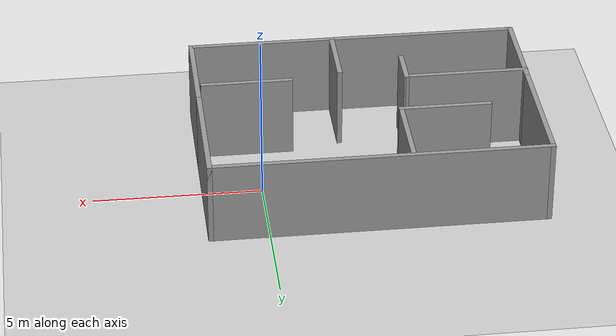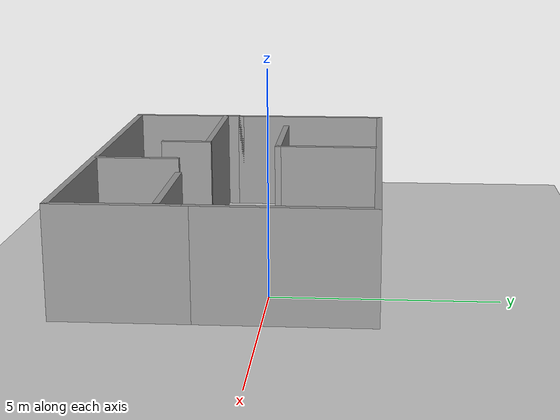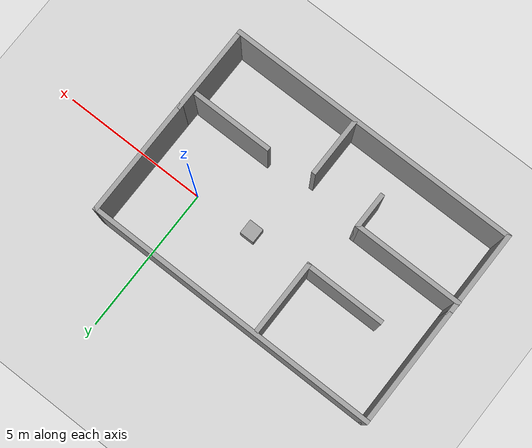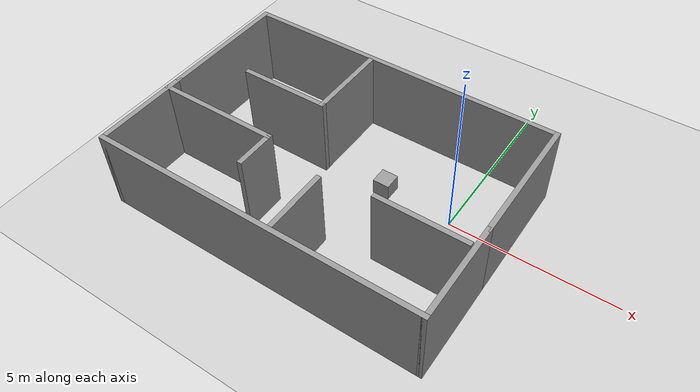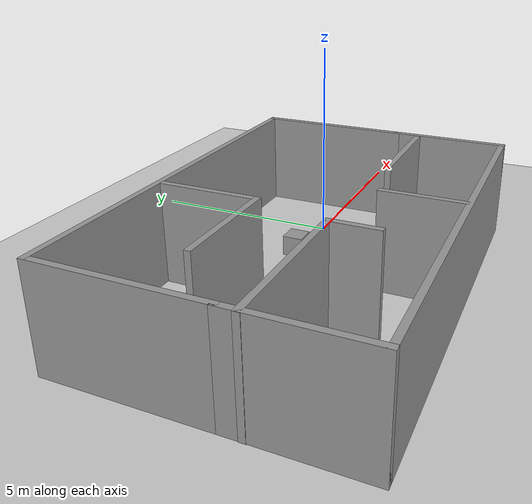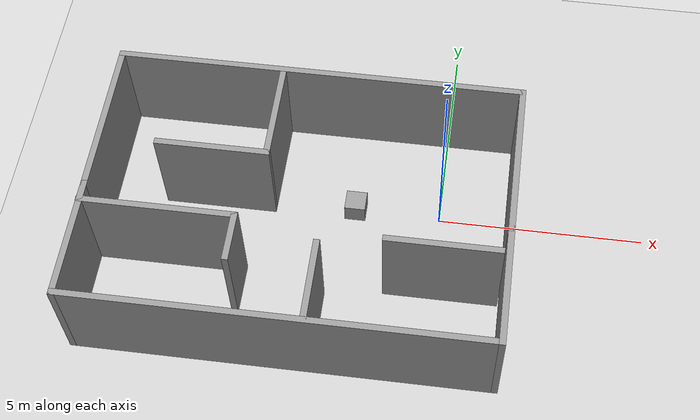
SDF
<sdf version="1.7">
 <world name="default">
  <light name="sun" type="directional">
   <pose>0 0 10 0 -0 0</pose>
   <diffuse>0.8 0.8 0.8 1</diffuse>
   <specular>0.2 0.2 0.2 1</specular>
   <attenuation>
    <range>1000</range>
    <constant>0.9</constant>
    <linear>0.01</linear>
    <quadratic>0.001</quadratic>
   </attenuation>
   <direction>-0.5 0.1 -0.9</direction>
   <spot><inner_angle>0</inner_angle><outer_angle>0</outer_angle><falloff>0</falloff></spot>
  </light>
  <model name="ground_plane">
   <static>1</static>
   <link name="link">
    <collision name="collision">
     <geometry><plane><normal>0 0 1</normal><size>100 100</size></plane></geometry>
     <surface>
      <contact><collide_bitmask>65535</collide_bitmask></contact>
      <friction><ode><mu>100</mu><mu2>50</mu2></ode></friction>
     </surface>
    </collision>
    <visual name="visual">
     <cast_shadows>0</cast_shadows>
     <geometry><plane><normal>0 0 1</normal><size>100 100</size></plane></geometry>
     <material>
      <script><uri>file://media/materials/scripts/gazebo.material</uri><name>Gazebo/Grey</name></script>
     </material>
    </visual>
   </link>
  </model>
  <gravity>0 0 -9.8</gravity>
  <magnetic_field>6e-06 2.3e-05 -4.2e-05</magnetic_field>
  <atmosphere type="adiabatic"/>
  <physics type="ode">
   <max_step_size>0.001</max_step_size>
   <real_time_factor>1</real_time_factor>
   <real_time_update_rate>1000</real_time_update_rate>
  </physics>
  <scene><ambient>0.4 0.4 0.4 1</ambient><background>0.7 0.7 0.7 1</background><shadows>1</shadows></scene>
  <spherical_coordinates>
   <surface_model>EARTH_WGS84</surface_model>
   <latitude_deg>0</latitude_deg>
   <longitude_deg>0</longitude_deg>
   <elevation>0</elevation>
   <heading_deg>0</heading_deg>
  </spherical_coordinates>
  <model name="room">
   <pose>-3.21764 -1.00613 0 0 -0 0</pose>
   <link name="Wall_10">
    <collision name="Wall_10_Collision">
     <geometry><box><size>4 0.15 2.5</size></box></geometry>
     <pose>0 0 1.25 0 -0 0</pose>
    </collision>
    <visual name="Wall_10_Visual">
     <pose>0 0 1.25 0 -0 0</pose>
     <geometry><box><size>4 0.15 2.5</size></box></geometry>
     <material>
      <script><uri>file://media/materials/scripts/gazebo.material</uri><name>Gazebo/Grey</name></script>
      <ambient>1 1 1 1</ambient>
     </material>
     <meta><layer>0</layer></meta>
    </visual>
    <pose>-4.92018 1.425 0 0 -0 1.5708</pose>
   </link>
   <link name="Wall_11">
    <collision name="Wall_11_Collision">
     <geometry><box><size>10 0.15 2.5</size></box></geometry>
     <pose>0 0 1.25 0 -0 0</pose>
    </collision>
    <visual name="Wall_11_Visual">
     <pose>0 0 1.25 0 -0 0</pose>
     <geometry><box><size>10 0.15 2.5</size></box></geometry>
     <material>
      <script><uri>file://media/materials/scripts/gazebo.material</uri><name>Gazebo/Grey</name></script>
      <ambient>1 1 1 1</ambient>
     </material>
     <meta><layer>0</layer></meta>
    </visual>
    <pose>0.004816 3.35 0 0 -0 0</pose>
   </link>
   <link name="Wall_14">
    <collision name="Wall_14_Collision">
     <geometry><box><size>4 0.15 2.5</size></box></geometry>
     <pose>0 0 1.25 0 -0 0</pose>
    </collision>
    <visual name="Wall_14_Visual">
     <pose>0 0 1.25 0 -0 0</pose>
     <geometry><box><size>4 0.15 2.5</size></box></geometry>
     <material>
      <script><uri>file://media/materials/scripts/gazebo.material</uri><name>Gazebo/Grey</name></script>
      <ambient>1 1 1 1</ambient>
     </material>
     <meta><layer>0</layer></meta>
    </visual>
    <pose>4.92982 1.425 0 0 -0 -1.5708</pose>
   </link>
   <link name="Wall_36">
    <collision name="Wall_36_Collision">
     <geometry><box><size>3 0.15 2.5</size></box></geometry>
     <pose>0 0 1.25 0 -0 0</pose>
    </collision>
    <visual name="Wall_36_Visual">
     <pose>0 0 1.25 0 -0 0</pose>
     <geometry><box><size>3 0.15 2.5</size></box></geometry>
     <material>
      <script><uri>file://media/materials/scripts/gazebo.material</uri><name>Gazebo/Grey</name></script>
      <ambient>1 1 1 1</ambient>
     </material>
     <meta><layer>0</layer></meta>
    </visual>
    <pose>-4.92018 -1.925 0 0 -0 -1.5708</pose>
   </link>
   <link name="Wall_37">
    <collision name="Wall_37_Collision">
     <geometry><box><size>10 0.15 2.5</size></box></geometry>
     <pose>0 0 1.25 0 -0 0</pose>
    </collision>
    <visual name="Wall_37_Visual">
     <pose>0 0 1.25 0 -0 0</pose>
     <geometry><box><size>10 0.15 2.5</size></box></geometry>
     <material>
      <script><uri>file://media/materials/scripts/gazebo.material</uri><name>Gazebo/Grey</name></script>
      <ambient>1 1 1 1</ambient>
     </material>
     <meta><layer>0</layer></meta>
    </visual>
    <pose>0.004816 -3.35 0 0 -0 0</pose>
   </link>
   <link name="Wall_38">
    <collision name="Wall_38_Collision">
     <geometry><box><size>3 0.15 2.5</size></box></geometry>
     <pose>0 0 1.25 0 -0 0</pose>
    </collision>
    <visual name="Wall_38_Visual">
     <pose>0 0 1.25 0 -0 0</pose>
     <geometry><box><size>3 0.15 2.5</size></box></geometry>
     <material>
      <script><uri>file://media/materials/scripts/gazebo.material</uri><name>Gazebo/Grey</name></script>
      <ambient>1 1 1 1</ambient>
     </material>
     <meta><layer>0</layer></meta>
    </visual>
    <pose>4.92982 -1.925 0 0 -0 1.5708</pose>
   </link>
   <link name="Wall_40">
    <collision name="Wall_40_Collision">
     <geometry><box><size>3.75 0.15 2.5</size></box></geometry>
     <pose>0 0 1.25 0 -0 0</pose>
    </collision>
    <visual name="Wall_40_Visual">
     <pose>0 0 1.25 0 -0 0</pose>
     <geometry><box><size>3.75 0.15 2.5</size></box></geometry>
     <material>
      <script><uri>file://media/materials/scripts/gazebo.material</uri><name>Gazebo/Grey</name></script>
      <ambient>1 1 1 1</ambient>
     </material>
     <meta><layer>0</layer></meta>
    </visual>
    <pose>-3.12982 -0.92116 0 0 -0 0</pose>
   </link>
   <link name="Wall_41">
    <collision name="Wall_41_Collision">
     <geometry><box><size>1.25 0.15 2.5</size></box></geometry>
     <pose>0 0 1.25 0 -0 0</pose>
    </collision>
    <visual name="Wall_41_Visual">
     <pose>0 0 1.25 0 -0 0</pose>
     <geometry><box><size>1.25 0.15 2.5</size></box></geometry>
     <material>
      <script><uri>file://media/materials/scripts/gazebo.material</uri><name>Gazebo/Grey</name></script>
      <ambient>1 1 1 1</ambient>
     </material>
     <meta><layer>0</layer></meta>
    </visual>
    <pose>-1.32982 -1.47116 0 0 -0 -1.5708</pose>
   </link>
   <link name="Wall_43">
    <collision name="Wall_43_Collision">
     <geometry><box><size>2.5 0.15 2.5</size></box></geometry>
     <pose>0 0 1.25 0 -0 0</pose>
    </collision>
    <visual name="Wall_43_Visual">
     <pose>0 0 1.25 0 -0 0</pose>
     <geometry><box><size>2.5 0.15 2.5</size></box></geometry>
     <material>
      <script><uri>file://media/materials/scripts/gazebo.material</uri><name>Gazebo/Grey</name></script>
      <ambient>1 1 1 1</ambient>
     </material>
     <meta><layer>0</layer></meta>
    </visual>
    <pose>-0.905091 2.04422 0 0 -0 -1.5708</pose>
   </link>
   <link name="Wall_44">
    <collision name="Wall_44_Collision">
     <geometry><box><size>2.75 0.15 2.5</size></box></geometry>
     <pose>0 0 1.25 0 -0 0</pose>
    </collision>
    <visual name="Wall_44_Visual">
     <pose>0 0 1.25 0 -0 0</pose>
     <geometry><box><size>2.75 0.15 2.5</size></box></geometry>
     <material>
      <script><uri>file://media/materials/scripts/gazebo.material</uri><name>Gazebo/Grey</name></script>
      <ambient>1 1 1 1</ambient>
     </material>
     <meta><layer>0</layer></meta>
    </visual>
    <pose>-2.20509 0.869219 0 0 -0 3.14159</pose>
   </link>
   <link name="Wall_46">
    <collision name="Wall_46_Collision">
     <geometry><box><size>2.75 0.15 2.5</size></box></geometry>
     <pose>0 0 1.25 0 -0 0</pose>
    </collision>
    <visual name="Wall_46_Visual">
     <pose>0 0 1.25 0 -0 0</pose>
     <geometry><box><size>2.75 0.15 2.5</size></box></geometry>
     <material>
      <script><uri>file://media/materials/scripts/gazebo.material</uri><name>Gazebo/Grey</name></script>
      <ambient>1 1 1 1</ambient>
     </material>
     <meta><layer>0</layer></meta>
    </visual>
    <pose>3.44815 -1.10621 0 0 -0 0</pose>
   </link>
   <link name="Wall_52">
    <collision name="Wall_52_Collision">
     <geometry><box><size>2 0.15 2.5</size></box></geometry>
     <pose>0 0 1.25 0 -0 0</pose>
    </collision>
    <visual name="Wall_52_Visual">
     <pose>0 0 1.25 0 -0 0</pose>
     <geometry><box><size>2 0.15 2.5</size></box></geometry>
     <material>
      <script><uri>file://media/materials/scripts/gazebo.material</uri><name>Gazebo/Grey</name></script>
      <ambient>1 1 1 1</ambient>
     </material>
     <meta><layer>0</layer></meta>
    </visual>
    <pose>0.62153 -2.33235 0 0 -0 1.5708</pose>
   </link>
   <static>1</static>
  </model>
  <model name="unit_box">
   <link name="link_0_clone">
    <inertial>
     <mass>1</mass>
     <inertia>
      <ixx>0.166667</ixx>
      <ixy>0</ixy>
      <ixz>0</ixz>
      <iyy>0.166667</iyy>
      <iyz>0</iyz>
      <izz>0.166667</izz>
     </inertia>
    </inertial>
    <pose>0.712844 -0.692275 -0 0 -0 0</pose>
    <visual name="visual">
     <geometry><box><size>0.5 0.5 0.5</size></box></geometry>
     <material>
      <lighting>1</lighting>
      <script><uri>file://media/materials/scripts/gazebo.material</uri><name>Gazebo/Grey</name></script>
      <shader type="pixel"><normal_map>__default__</normal_map></shader>
      <ambient>0.3 0.3 0.3 1</ambient>
      <diffuse>0.7 0.7 0.7 1</diffuse>
      <specular>0.01 0.01 0.01 1</specular>
      <emissive>0 0 0 1</emissive>
     </material>
    </visual>
    <collision name="collision">
     <geometry><box><size>0.5 0.5 0.5</size></box></geometry>
     <surface>
      <friction>
       <ode><mu>1</mu><mu2>1</mu2><fdir1>0 0 0</fdir1><slip1>0</slip1><slip2>0</slip2></ode>
       <torsional>
        <coefficient>1</coefficient>
        <patch_radius>0</patch_radius>
        <surface_radius>0</surface_radius>
        <use_patch_radius>1</use_patch_radius>
        <ode><slip>0</slip></ode>
       </torsional>
      </friction>
      <bounce><restitution_coefficient>0</restitution_coefficient><threshold>1e+06</threshold></bounce>
      <contact>
       <collide_without_contact>0</collide_without_contact>
       <collide_without_contact_bitmask>1</collide_without_contact_bitmask>
       <collide_bitmask>1</collide_bitmask>
       <ode>
        <soft_cfm>0</soft_cfm>
        <soft_erp>0.2</soft_erp>
        <kp>1e+13</kp>
        <kd>1</kd>
        <max_vel>0.01</max_vel>
        <min_depth>0</min_depth>
       </ode>
       <bullet>
        <split_impulse>1</split_impulse>
        <split_impulse_penetration_threshold>-0.01</split_impulse_penetration_threshold>
        <soft_cfm>0</soft_cfm>
        <soft_erp>0.2</soft_erp>
        <kp>1e+13</kp>
        <kd>1</kd>
       </bullet>
      </contact>
     </surface>
    </collision>
   </link>
   <static>0</static>
   <pose>-2.76044 0.588476 0.5 0 -0 0</pose>
  </model>
 </world>
</sdf>
